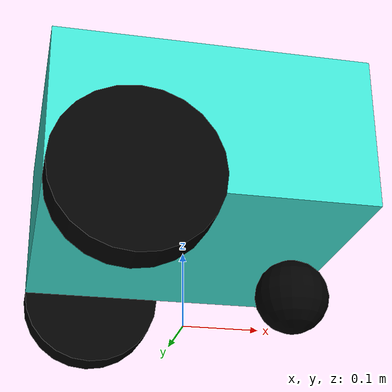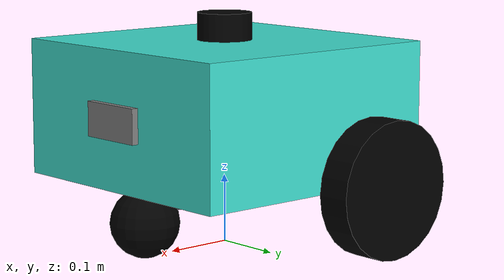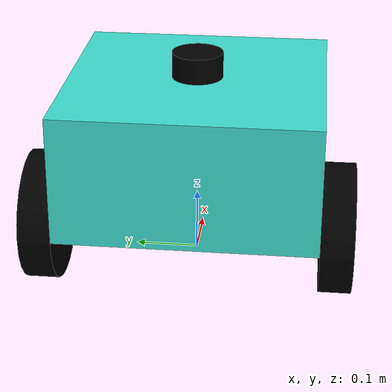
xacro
<?xml version="1.0"?>
<robot name="navbot" xmlns:xacro="http://www.ros.org/wiki/xacro">

    <xacro:include filename="common_properties.xacro" />
    <xacro:include filename="my_navbot_core.xacro" />
    <xacro:include filename="my_navbot_gazebo.xacro" />
    <xacro:include filename="depth_camera.xacro" />
    <xacro:include filename="lidar.xacro" />

</robot>

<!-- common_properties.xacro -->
<robot xmlns:xacro="http://www.ros.org/wiki/xacro">

    <material name="turquoise">
        <color rgba="0.25 0.88 0.82 1" />
    </material>
    <material name="black">
        <color rgba="0 0 0 1" />
    </material>

    <material name="grey">
        <color rgba="0.5 0.5 0.5 1" />
    </material>

    <xacro:macro name="box_inertia" params="m x y z o_xyz o_rpy">
        <inertial>
            <mass value="${m}" />
            <origin xyz="${o_xyz}" rpy="${o_rpy}" />
            <inertia ixx="${(m/12) * (y*y + z*z)}" ixy="0" ixz="0"
                     iyy="${(m/12) * (x*x + z*z)}" iyz="0"
                     izz="${(m/12) * (x*x + y*y)}" />
        </inertial>
    </xacro:macro>

    <xacro:macro name="cylinder_inertia" params="m r l o_xyz o_rpy">
        <inertial>
            <mass value="${m}" />
            <origin xyz="${o_xyz}" rpy="${o_rpy}" />
            <inertia ixx="${(m/12) * (3*r*r + l*l)}" ixy="0" ixz="0"
                     iyy="${(m/12) * (3*r*r + l*l)}" iyz="0"
                     izz="${(m/2) * (r*r)}" />
        </inertial>
    </xacro:macro>

    <xacro:macro name="sphere_inertia" params="m r o_xyz o_rpy">
        <inertial>
            <mass value="${m}" />
            <origin xyz="${o_xyz}" rpy="${o_rpy}" />
            <inertia ixx="${(2/5)* m * r * r}" ixy="0" ixz="0"
                     iyy="${(2/5)* m * r * r}" iyz="0"
                     izz="${(2/5)* m * r * r}" />
        </inertial>
    </xacro:macro>

</robot>

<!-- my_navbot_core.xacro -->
<robot xmlns:xacro="http://www.ros.org/wiki/xacro">

    <link name="base_footprint" />

    <joint name="base_joint" type="fixed">
        <parent link="base_footprint" />
        <child link="base_link" />
        <origin xyz="0 0 0.2" rpy="0 0 0" />
    </joint>

    <link name="base_link">
        <visual>
            <geometry>
                <box size="0.4 0.4 0.2" />
            </geometry>
            <origin xyz="0 0 0" rpy="0 0 0" />
            <material name="turquoise" />
        </visual>
        <collision>
            <geometry>
                <box size="0.4 0.4 0.2" />
            </geometry>
            <origin xyz="0 0 0" rpy="0 0 0" />
        </collision>
        <xacro:box_inertia m="5.0" x="0.4" y="0.4" z="0.2"
                           o_xyz="0 0 0" o_rpy="0 0 0" />
    </link>

    <joint name="base_right_wheel_joint" type="continuous">
        <parent link="base_link" />
        <child link="right_wheel_link" />
        <origin xyz="-0.1 -0.225 -0.1" rpy="0 0 0" />
        <axis xyz="0 1 0" />
    </joint>

    <link name="right_wheel_link">
        <visual>
            <geometry>
                <cylinder radius="0.1" length="0.05" />
            </geometry>
            <origin xyz="0 0 0" rpy="1.57 0 0" />
            <material name="black" />
        </visual>
        <collision>
            <geometry>
                <cylinder radius="0.1" length="0.05" />
            </geometry>
            <origin xyz="0 0 0" rpy="1.57 0 0" />
        </collision>
        <xacro:cylinder_inertia m="0.5" r="0.1" l="0.05"
                           o_xyz="0 0 0" o_rpy="1.57 0 0" />
    </link>

    <joint name="base_left_wheel_joint" type="continuous">
        <parent link="base_link" />
        <child link="left_wheel_link" />
        <origin xyz="-0.1 0.225 -0.1" rpy="0 0 0" />
        <axis xyz="0 1 0" />
    </joint>

    <link name="left_wheel_link">
        <visual>
            <geometry>
                <cylinder radius="0.1" length="0.05" />
            </geometry>
            <origin xyz="0 0 0" rpy="1.57 0 0" />
            <material name="black" />
        </visual>
        <collision>
            <geometry>
                <cylinder radius="0.1" length="0.05" />
            </geometry>
            <origin xyz="0 0 0" rpy="1.57 0 0" />
        </collision>
        <xacro:cylinder_inertia m="0.5" r="0.1" l="0.05"
                           o_xyz="0 0 0" o_rpy="1.57 0 0" />
    </link>

    <joint name="base_caster_wheel_joint" type="fixed">
        <parent link="base_link" />
        <child link="caster_wheel_link" />
        <origin xyz="0.15 0 -0.15" rpy="0 0 0" />
    </joint>

    <link name="caster_wheel_link">
        <visual>
            <geometry>
                <sphere radius="0.05" />
            </geometry>
            <origin xyz="0 0 0" rpy="0 0 0" />
            <material name="black" />
        </visual>
        <collision>
            <geometry>
                <sphere radius="0.05" />
            </geometry>
            <origin xyz="0 0 0" rpy="0 0 0" />
        </collision>
        <xacro:sphere_inertia m="0.5" r="0.05"
                           o_xyz="0 0 0" o_rpy="0 0 0" />
    </link>

</robot>

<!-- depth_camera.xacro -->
<robot xmlns:xacro="http://www.ros.org/wiki/xacro">

    <xacro:property name="camera_length" value="0.01" />
    <xacro:property name="camera_width" value="0.1" />
    <xacro:property name="camera_height" value="0.05" />

    <link name="camera_link">
        <visual>
            <geometry>
                <box size="${camera_length} ${camera_width} ${camera_height}" />
            </geometry>
            <material name="grey" />
        </visual>
        <collision>
            <geometry>
                <box size="${camera_length} ${camera_width} ${camera_height}" />
            </geometry>
        </collision>
        <xacro:box_inertia m="0.1" x="${camera_length}" y="${camera_width}" z="${camera_height}"
                           o_xyz="0 0 0" o_rpy="0 0 0" />
    </link>

    <joint name="base_camera_joint" type="fixed">
        <parent link="base_link" />
        <child link="camera_link" />
        <origin xyz="${(0.4 + camera_length)/2.0} 0 0" rpy="0 0 0" />
    </joint>

    <link name="camera_link_optical" />

    <joint name="camera_optical_joint" type="fixed">
        <origin xyz="0 0 0" rpy="${-pi/2} 0 ${-pi/2}" />
        <parent link="camera_link"/>
        <child link="camera_link_optical" />
    </joint>

    <gazebo reference="camera_link">
        <!-- Depth Camera -->
        <sensor name="depth_camera" type="depth_camera">
            <update_rate>10</update_rate>
            <topic>depth_camera</topic>
            <camera>
            <horizontal_fov>1.05</horizontal_fov>
            <image>
                <width>256</width>
                <height>256</height>
                <format>B8G8R8</format>
            </image>
            <clip>
                <near>0.1</near>
                <far>10.0</far>
            </clip>
            </camera>
            <always_on>true</always_on>
            <visualize>true</visualize>
            <gz_frame_id>camera_link</gz_frame_id>
        </sensor>

        <!-- RGB Camera -->
        <sensor name="rgb_camera" type="camera">
            <update_rate>10</update_rate>
            <topic>rgb_camera/image_raw</topic>
            <camera>
            <horizontal_fov>1.05</horizontal_fov>
            <image>
                <width>256</width>
                <height>256</height>
                <format>B8G8R8</format>
            </image>
            <clip>
                <near>0.1</near>
                <far>10.0</far>
            </clip>
            </camera>
            <always_on>true</always_on>
            <visualize>true</visualize>
            <gz_frame_id>camera_link</gz_frame_id>
        </sensor>
    </gazebo>

</robot>

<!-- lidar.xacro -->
<robot xmlns:xacro="http://www.ros.org/wiki/xacro">

    <link name="lidar_link">
        <visual>
            <geometry>
                <cylinder radius=" 0.04" length="0.04" />
            </geometry>
            <material name="black" />
            <origin xyz="0 0 0" rpy="0 0 0" />
        </visual>
        <collision>
            <geometry>
                <cylinder radius=" 0.04" length="0.04" />
            </geometry>
            <origin xyz="0 0 0" rpy="0 0 0" />
        </collision>
        <xacro:cylinder_inertia m="0.1" l="0.04" r="0.04"
                                o_xyz="0 0 0" o_rpy="0 0 0" />
    </link>

    <joint name="base_lidar_joint" type="fixed">
        <parent link="base_link" />
        <child link="lidar_link" />
        <origin xyz="0 0 0.12" rpy="0 0 0" />
    </joint>

    <gazebo reference="lidar_link">
        <sensor name='laser' type='gpu_lidar'>
            <pose>0 0 0 0 0 0</pose>
            <visualize>false</visualize>
            <update_rate>10</update_rate>
            <lidar>
                <scan>
                    <horizontal>
                        <samples>360</samples>
                        <min_angle>-3.14</min_angle>
                        <max_angle>3.14</max_angle>
                    </horizontal>
                </scan>
                <range>
                    <min>0.3</min>
                    <max>20</max>
                </range>
            </lidar>
            <topic>lidar</topic>
              <gz_frame_id>lidar_link</gz_frame_id>
        </sensor>
    </gazebo>

</robot>
